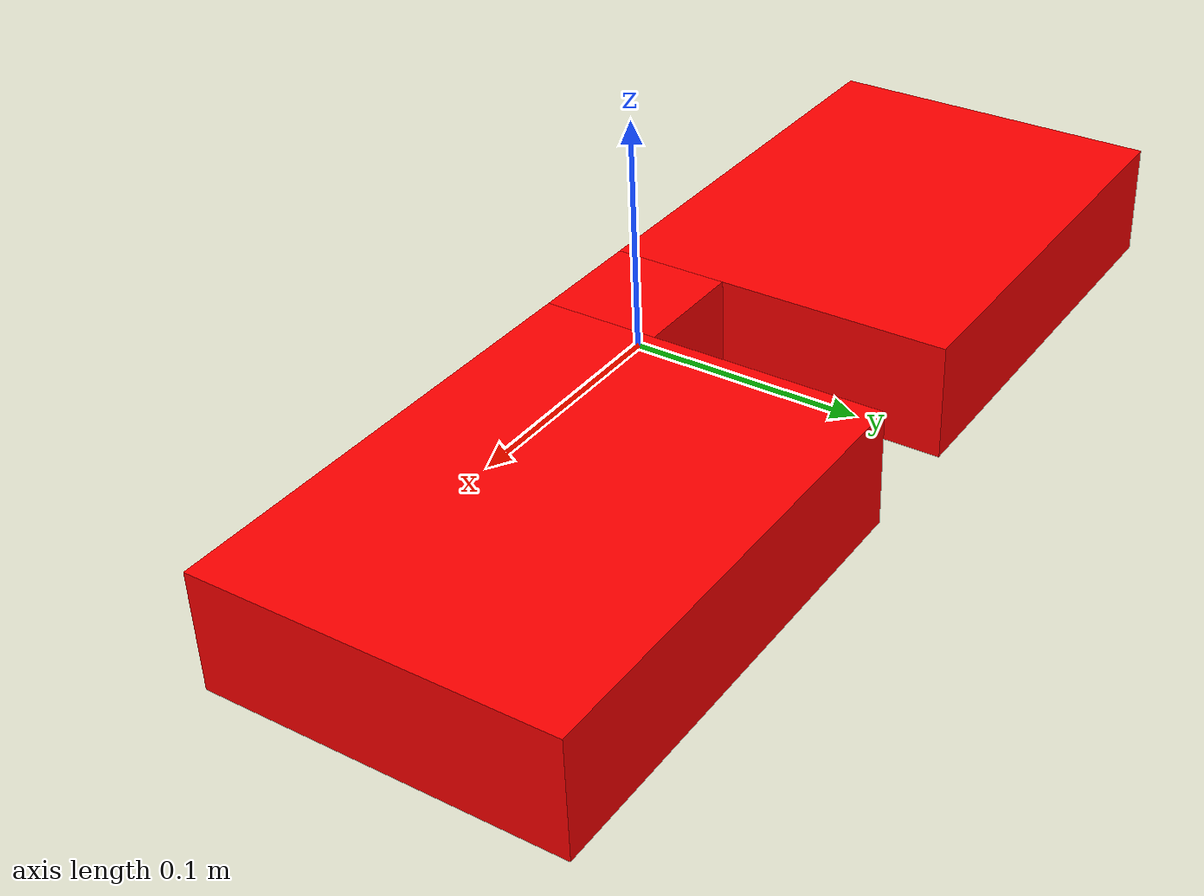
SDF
<?xml version="1.0"?>
<sdf version="1.7">
  <model name="peg_hole">
    <link name="base_peg_hole_link"/>
    <link name="target_link">
      <pose>0 0 0 0 0 0</pose>
      <inertial>
        <mass>1.0</mass>
        <inertia>
          <ixx>0.03542</ixx> <ixy>0.0</ixy> <ixz>0.0</ixz>
          <iyy>0.03542</iyy> <iyz>0.0</iyz>
          <izz>0.03542</izz>
        </inertia>
      </inertial>
      <collision name="collision">
        <geometry>
          <box>
            <size>0.05 0.05 0.05</size>
          </box>
        </geometry>
      </collision>
      <visual name="visual">
        <geometry>
          <box>
            <size>0.05 0.05 0.05</size>
          </box>
        </geometry>
        <material>
          <diffuse>1.0 0.0 0.0 1.0</diffuse>
        </material>
      </visual>
    </link>
    <link name="left_link">
      <pose>-0.125 0.05 0.0 0 0 0</pose>
      <inertial>
        <mass>1.0</mass>
        <inertia>
          <ixx>0.1666</ixx> <ixy>0.0</ixy> <ixz>0.0</ixz>
          <iyy>0.1666</iyy> <iyz>0.0</iyz>
          <izz>0.1666</izz>
        </inertia>
      </inertial>
      <collision name="collision">
        <geometry>
          <box>
            <size>0.2 0.15 0.05</size>
          </box>
        </geometry>
        <surface>
          <friction>
            <ode>
              <mu>0.01</mu>
              <mu2>0.01</mu2>
            </ode>
          </friction>
        </surface>
      </collision>
      <visual name="visual">
        <geometry>
          <box>
            <size>0.2 0.15 0.05</size>
          </box>
        </geometry>
        <material>
          <diffuse>1.0 0.0 0.0 1.0</diffuse>
        </material>
      </visual>
    </link>
    <link name="right_link">
      <pose>0.125 0.05 0.0 0 0 0</pose>
      <inertial>
        <mass>1.0</mass>
        <inertia>
          <ixx>0.1666</ixx> <ixy>0.0</ixy> <ixz>0.0</ixz>
          <iyy>0.1666</iyy> <iyz>0.0</iyz>
          <izz>0.1666</izz>
        </inertia>
      </inertial>
      <collision name="collision">
        <geometry>
          <box>
            <size>0.2 0.15 0.05</size>
          </box>
        </geometry>
        <surface>
          <friction>
            <ode>
              <mu>0.01</mu>
              <mu2>0.01</mu2>
            </ode>
          </friction>
        </surface>
      </collision>
      <visual name="visual">
        <geometry>
          <box>
            <size>0.2 0.15 0.05</size>
          </box>
        </geometry>
        <material>
          <diffuse>1.0 0.0 0.0 1.0</diffuse>
        </material>
      </visual>
    </link>
    <joint name="base_to_target" type="fixed">
      <parent>base_peg_hole_link</parent>
      <child>target_link</child>
    </joint>
    <joint name="target_to_left" type="fixed">
      <parent>target_link</parent>
      <child>left_link</child>
    </joint>
    <joint name="target_to_right" type="fixed">
      <parent>target_link</parent>
      <child>right_link</child>
    </joint>
  </model>
</sdf>
